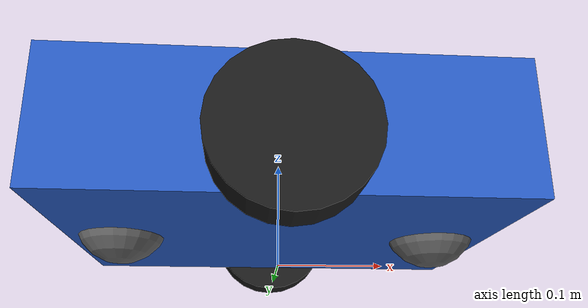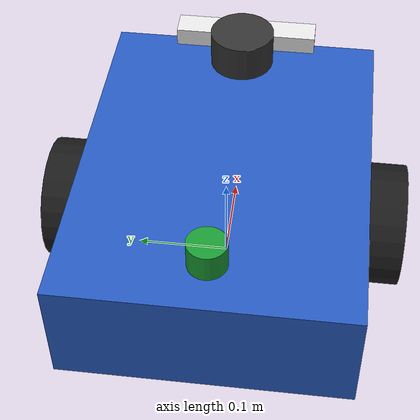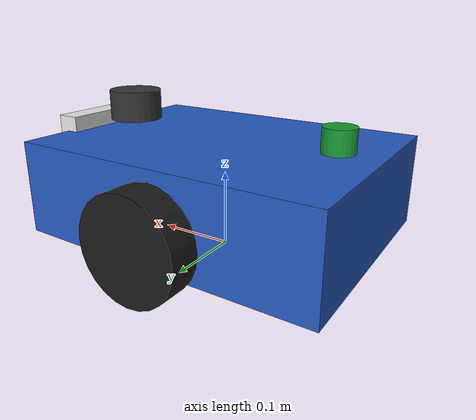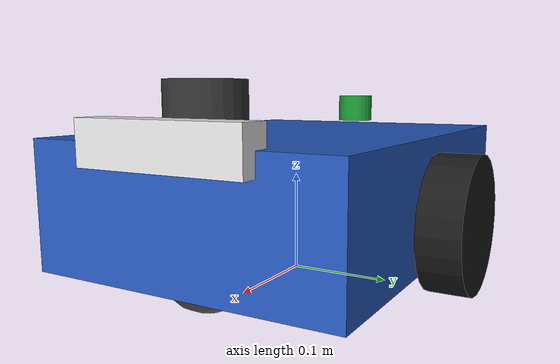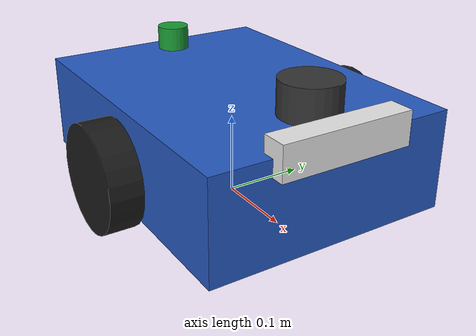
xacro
<?xml version="1.0"?>
<robot name="autobot" xmlns:xacro="http://ros.org/wiki/xacro">

  <!-- ============================ Parameters ============================ -->
  <xacro:property name="base_length" value="0.40"/>
  <xacro:property name="base_width"  value="0.30"/>
  <xacro:property name="base_height" value="0.12"/>
  <xacro:property name="base_mass"   value="6.0"/>

  <xacro:property name="wheel_radius"    value="0.065"/>
  <xacro:property name="wheel_width"     value="0.040"/>
  <xacro:property name="wheel_mass"      value="0.5"/>
  <xacro:property name="wheel_separation" value="0.34"/>   <!-- centre-to-centre -->
  <xacro:property name="wheel_xoff"      value="0.0"/>      <!-- wheels centred under the CoM so the robot pivots cleanly in place -->
  <xacro:property name="wheel_zoff"      value="0.02"/>     <!-- drop below base centre -->

  <xacro:property name="caster_radius" value="0.045"/>
  <xacro:property name="caster_xoff"   value="0.15"/>

  <xacro:property name="PI" value="3.14159265359"/>

  <!-- ============================ Macros ============================ -->
  <!-- Solid cylinder inertia, axis along local Y (wheel spin axis) -->
  <xacro:macro name="cylinder_inertia_y" params="m r h">
    <inertia
      ixx="${(1/12)*m*(3*r*r + h*h)}" ixy="0.0" ixz="0.0"
      iyy="${0.5*m*r*r}"
      iyz="0.0"
      izz="${(1/12)*m*(3*r*r + h*h)}"/>
  </xacro:macro>

  <xacro:macro name="box_inertia" params="m x y z">
    <inertia
      ixx="${(1/12)*m*(y*y + z*z)}" ixy="0.0" ixz="0.0"
      iyy="${(1/12)*m*(x*x + z*z)}" iyz="0.0"
      izz="${(1/12)*m*(x*x + y*y)}"/>
  </xacro:macro>

  <xacro:macro name="sphere_inertia" params="m r">
    <inertia
      ixx="${0.4*m*r*r}" ixy="0.0" ixz="0.0"
      iyy="${0.4*m*r*r}" iyz="0.0"
      izz="${0.4*m*r*r}"/>
  </xacro:macro>

  <!-- ============================ base_footprint ============================ -->
  <!-- Ground-projected frame used by navigation / Nav2 conventions -->
  <link name="base_footprint"/>

  <joint name="base_joint" type="fixed">
    <parent link="base_footprint"/>
    <child  link="base_link"/>
    <origin xyz="0 0 ${wheel_radius + wheel_zoff}" rpy="0 0 0"/>
  </joint>

  <!-- ============================ base_link ============================ -->
  <link name="base_link">
    <visual>
      <origin xyz="0 0 0" rpy="0 0 0"/>
      <geometry>
        <box size="${base_length} ${base_width} ${base_height}"/>
      </geometry>
      <material name="chassis_blue">
        <color rgba="0.15 0.35 0.75 1.0"/>
      </material>
    </visual>
    <collision>
      <origin xyz="0 0 0" rpy="0 0 0"/>
      <geometry>
        <box size="${base_length} ${base_width} ${base_height}"/>
      </geometry>
    </collision>
    <inertial>
      <origin xyz="0 0 0" rpy="0 0 0"/>
      <mass value="${base_mass}"/>
      <xacro:box_inertia m="${base_mass}" x="${base_length}" y="${base_width}" z="${base_height}"/>
    </inertial>
  </link>

  <!-- ============================ Wheels ============================ -->
  <xacro:macro name="wheel" params="prefix y_reflect">
    <link name="${prefix}_wheel_link">
      <visual>
        <origin xyz="0 0 0" rpy="${PI/2} 0 0"/>
        <geometry>
          <cylinder radius="${wheel_radius}" length="${wheel_width}"/>
        </geometry>
        <material name="wheel_black">
          <color rgba="0.1 0.1 0.1 1.0"/>
        </material>
      </visual>
      <collision>
        <origin xyz="0 0 0" rpy="${PI/2} 0 0"/>
        <geometry>
          <cylinder radius="${wheel_radius}" length="${wheel_width}"/>
        </geometry>
      </collision>
      <inertial>
        <origin xyz="0 0 0" rpy="${PI/2} 0 0"/>
        <mass value="${wheel_mass}"/>
        <xacro:cylinder_inertia_y m="${wheel_mass}" r="${wheel_radius}" h="${wheel_width}"/>
      </inertial>
    </link>

    <joint name="${prefix}_wheel_joint" type="continuous">
      <parent link="base_link"/>
      <child  link="${prefix}_wheel_link"/>
      <origin xyz="${wheel_xoff} ${y_reflect * wheel_separation/2} ${-wheel_zoff}" rpy="0 0 0"/>
      <axis xyz="0 1 0"/>
      <dynamics damping="0.05" friction="0.02"/>
    </joint>
  </xacro:macro>

  <xacro:wheel prefix="left"  y_reflect="1"/>
  <xacro:wheel prefix="right" y_reflect="-1"/>

  <!-- ============================ Casters (front + rear) ============================ -->
  <!-- With the drive wheels centred, two frictionless ball casters (front and
       rear) keep the robot level fore-aft while letting it pivot in place. -->
  <xacro:macro name="caster" params="prefix x_sign">
    <link name="${prefix}_caster_link">
      <visual>
        <geometry><sphere radius="${caster_radius}"/></geometry>
        <material name="caster_grey"><color rgba="0.4 0.4 0.4 1.0"/></material>
      </visual>
      <collision>
        <geometry><sphere radius="${caster_radius}"/></geometry>
      </collision>
      <inertial>
        <mass value="0.2"/>
        <xacro:sphere_inertia m="0.2" r="${caster_radius}"/>
      </inertial>
    </link>

    <joint name="${prefix}_caster_joint" type="fixed">
      <parent link="base_link"/>
      <child  link="${prefix}_caster_link"/>
      <origin xyz="${x_sign * caster_xoff} 0 ${-(wheel_radius + wheel_zoff - caster_radius)}" rpy="0 0 0"/>
    </joint>
  </xacro:macro>

  <xacro:caster prefix="front" x_sign="1"/>
  <xacro:caster prefix="rear"  x_sign="-1"/>

  <!-- ============================ 2D Lidar ============================ -->
  <link name="lidar_link">
    <visual>
      <geometry><cylinder radius="0.035" length="0.04"/></geometry>
      <material name="lidar_dark"><color rgba="0.2 0.2 0.2 1.0"/></material>
    </visual>
    <collision>
      <geometry><cylinder radius="0.035" length="0.04"/></geometry>
    </collision>
    <inertial>
      <mass value="0.15"/>
      <xacro:cylinder_inertia_y m="0.15" r="0.035" h="0.04"/>
    </inertial>
  </link>

  <joint name="lidar_joint" type="fixed">
    <parent link="base_link"/>
    <child  link="lidar_link"/>
    <origin xyz="${base_length/2 - 0.05} 0 ${base_height/2 + 0.03}" rpy="0 0 0"/>
  </joint>

  <!-- ============================ Depth camera (Orbbec Astra class) ============================ -->
  <link name="camera_link">
    <visual>
      <geometry><box size="0.03 0.16 0.04"/></geometry>
      <material name="camera_white"><color rgba="0.9 0.9 0.9 1.0"/></material>
    </visual>
    <collision>
      <geometry><box size="0.03 0.16 0.04"/></geometry>
    </collision>
    <inertial>
      <mass value="0.2"/>
      <xacro:box_inertia m="0.2" x="0.03" y="0.16" z="0.04"/>
    </inertial>
  </link>

  <joint name="camera_joint" type="fixed">
    <parent link="base_link"/>
    <child  link="camera_link"/>
    <origin xyz="${base_length/2} 0 ${base_height/2}" rpy="0 0 0"/>
  </joint>

  <!-- Optical frame: REP-103, z-forward / x-right / y-down, used by image data -->
  <link name="camera_optical_link"/>
  <joint name="camera_optical_joint" type="fixed">
    <parent link="camera_link"/>
    <child  link="camera_optical_link"/>
    <origin xyz="0 0 0" rpy="${-PI/2} 0 ${-PI/2}"/>
  </joint>

  <!-- ============================ GPS ============================ -->
  <link name="gps_link">
    <visual>
      <geometry><cylinder radius="0.02" length="0.03"/></geometry>
      <material name="gps_green"><color rgba="0.1 0.6 0.2 1.0"/></material>
    </visual>
    <inertial>
      <mass value="0.05"/>
      <xacro:cylinder_inertia_y m="0.05" r="0.02" h="0.03"/>
    </inertial>
  </link>

  <joint name="gps_joint" type="fixed">
    <parent link="base_link"/>
    <child  link="gps_link"/>
    <origin xyz="${-base_length/2 + 0.05} 0 ${base_height/2 + 0.02}" rpy="0 0 0"/>
  </joint>

  <!-- ============================ Gazebo plugins & sensors ============================ -->
  <xacro:include filename="$(find robot_description)/urdf/robot.gazebo.xacro"/>

</robot>
